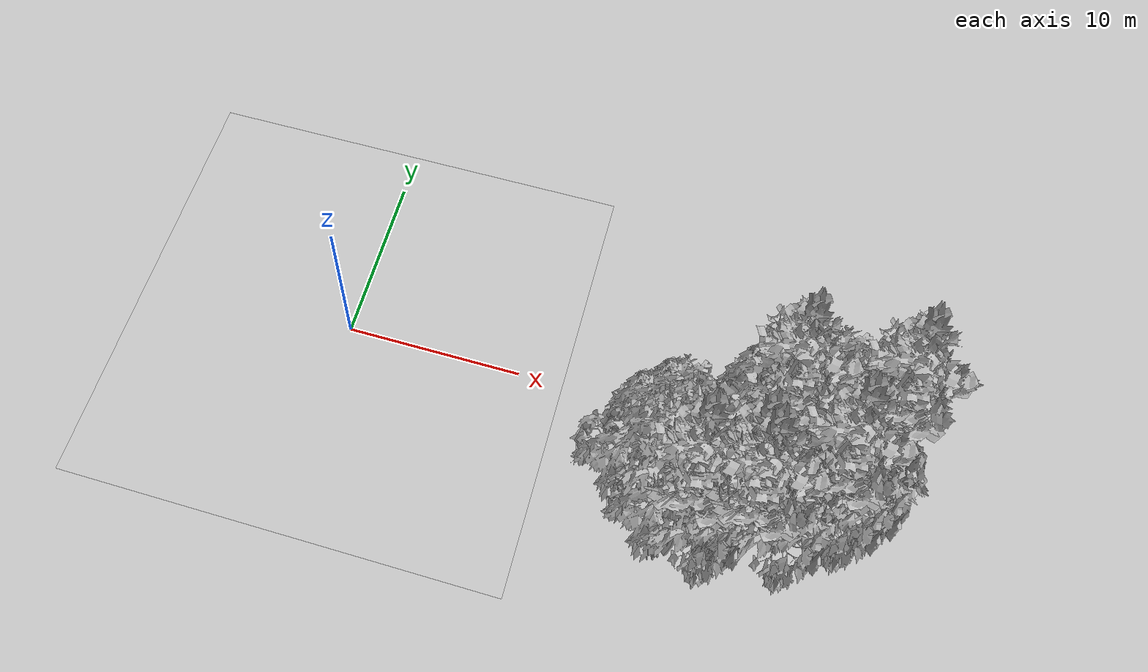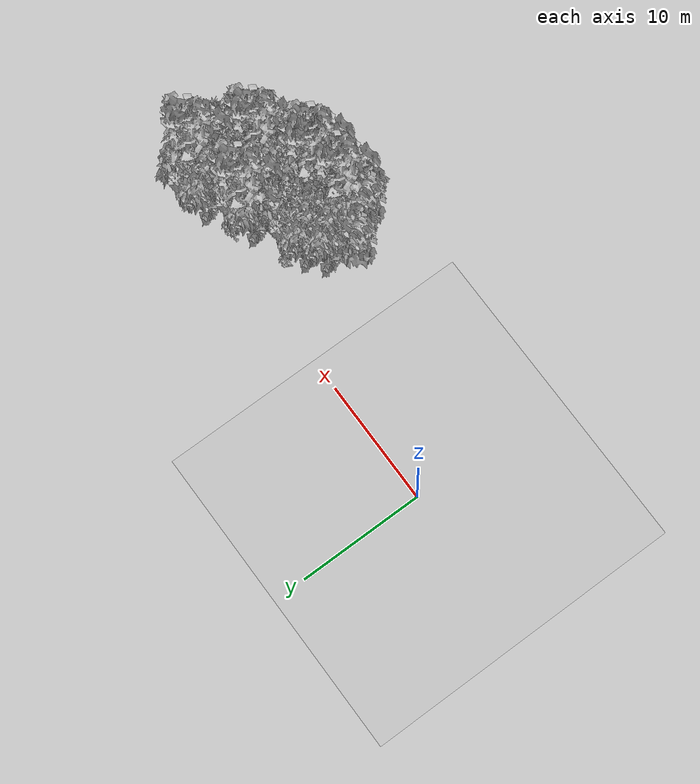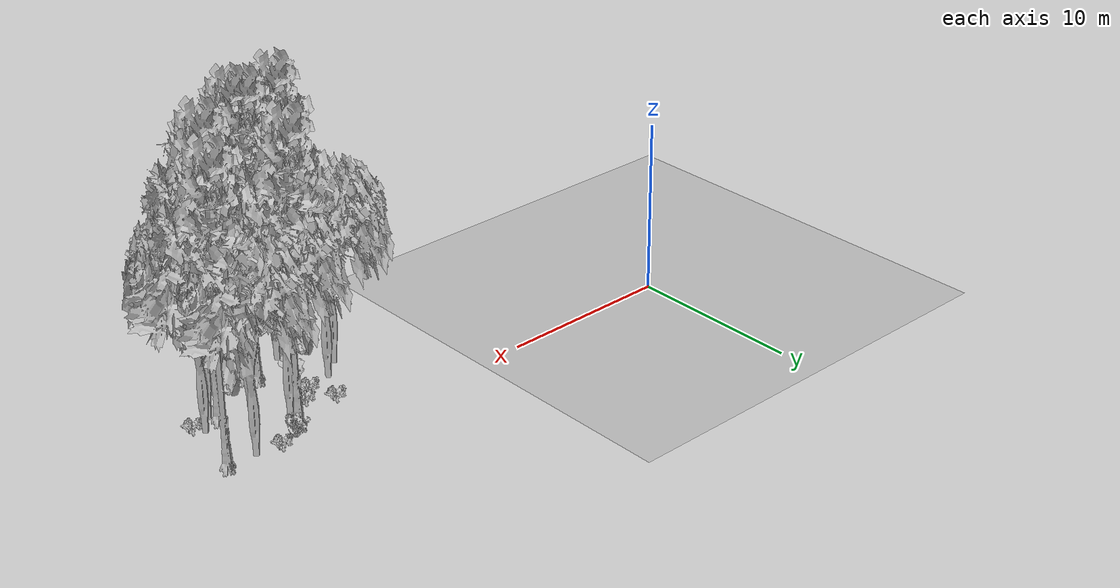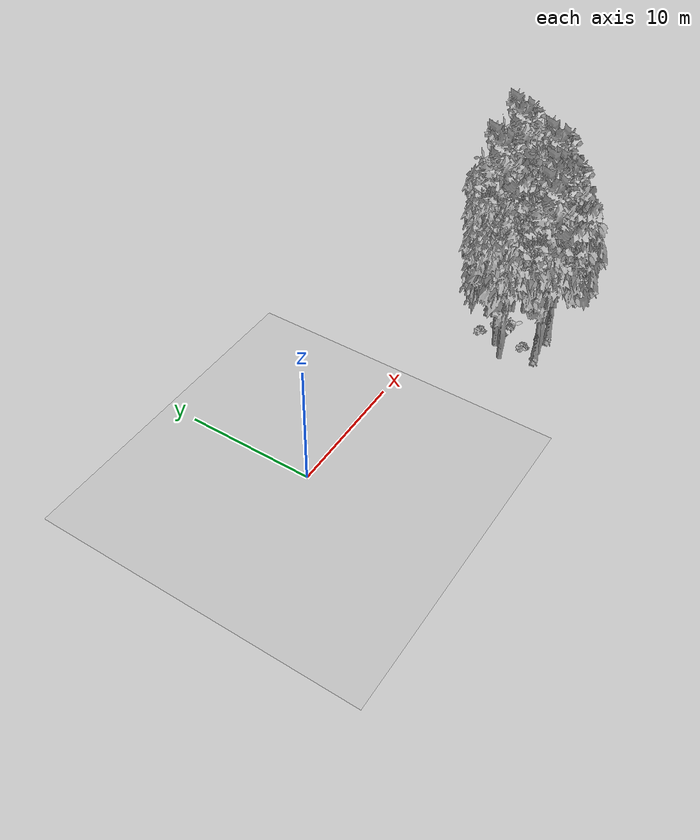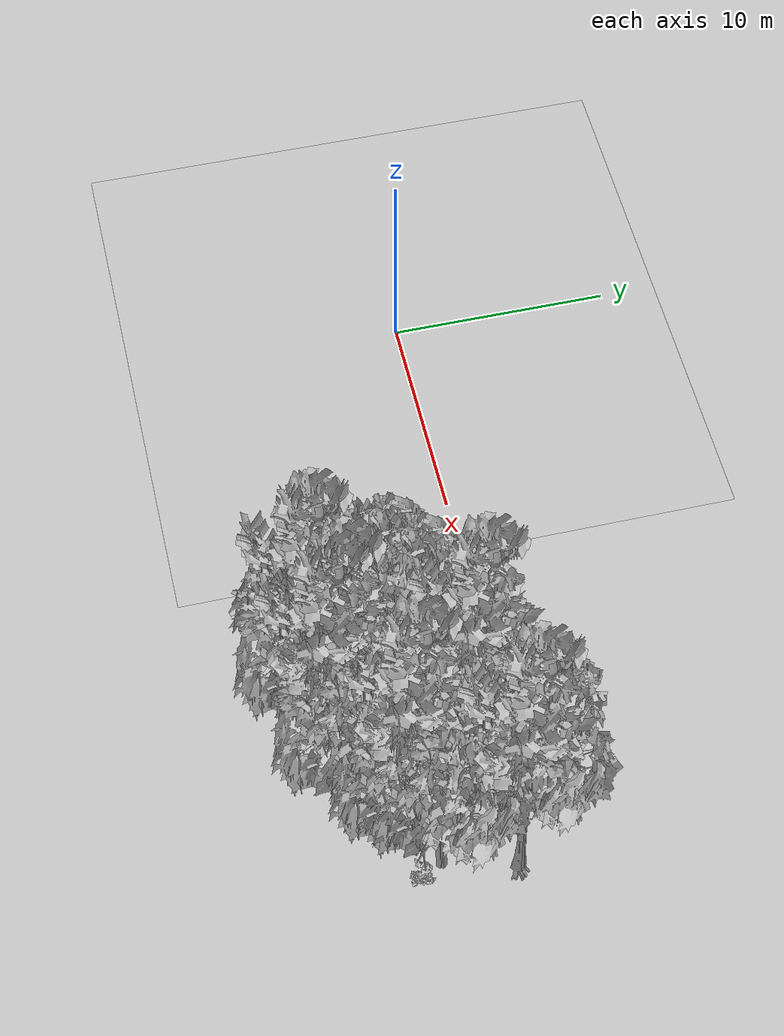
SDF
<sdf version="1.7">
 <world name="default">
  <model name="ground_plane">
   <static>1</static>
   <link name="link">
    <collision name="collision">
     <pose>-50 0 0 0 -0 0</pose>
     <geometry><plane><normal>0 0 1</normal><size>80 80</size></plane></geometry>
     <surface><contact><ode><min_depth>0.01</min_depth><max_vel>0</max_vel></ode></contact></surface>
    </collision>
    <visual name="grass">
     <cast_shadows>0</cast_shadows>
     <geometry>
      <mesh>
       <scale>0.46714285714285714 0.46714285714285714 0.1</scale>
       <uri>file://grass_plane/meshes/grass_plane.dae</uri>
      </mesh>
     </geometry>
    </visual>
   </link>
  </model>
  <model name="Tree 51">
   <static>1</static>
   <pose>21.892653599388716 -7.093573713923497 0 1.57079 -0 0</pose>
   <link name="link">
    <collision name="collision">
     <geometry><mesh><scale>3.5 5 3.5</scale><uri>model://tree_9/meshes/tree_9.obj</uri></mesh></geometry>
    </collision>
    <visual name="visual">
     <geometry><mesh><scale>3.5 5 3.5</scale><uri>model://tree_9/meshes/tree_9.obj</uri></mesh></geometry>
    </visual>
   </link>
  </model>
  <model name="Tree 112">
   <static>1</static>
   <pose>22.271250091400923 -7.65054004806732 0 1.57079 -0 0</pose>
   <link name="link">
    <collision name="collision">
     <geometry><mesh><scale>3.5 5 3.5</scale><uri>model://tree_9/meshes/tree_9.obj</uri></mesh></geometry>
    </collision>
    <visual name="visual">
     <geometry><mesh><scale>3.5 5 3.5</scale><uri>model://tree_9/meshes/tree_9.obj</uri></mesh></geometry>
    </visual>
   </link>
  </model>
  <model name="Tree 159">
   <static>1</static>
   <pose>19.56306355140191 -7.811197807668641 0 1.57079 -0 0</pose>
   <link name="link">
    <collision name="collision">
     <geometry><mesh><scale>3.5 5 3.5</scale><uri>model://tree_9/meshes/tree_9.obj</uri></mesh></geometry>
    </collision>
    <visual name="visual">
     <geometry><mesh><scale>3.5 5 3.5</scale><uri>model://tree_9/meshes/tree_9.obj</uri></mesh></geometry>
    </visual>
   </link>
  </model>
  <model name="Tree 164">
   <static>1</static>
   <pose>18.007614940359588 -5.51304747289911 0 1.57079 -0 0</pose>
   <link name="link">
    <collision name="collision">
     <geometry><mesh><scale>3.5 5 3.5</scale><uri>model://tree_2/meshes/tree_2.obj</uri></mesh></geometry>
    </collision>
    <visual name="visual">
     <geometry><mesh><scale>3.5 5 3.5</scale><uri>model://tree_2/meshes/tree_2.obj</uri></mesh></geometry>
    </visual>
   </link>
  </model>
  <model name="Tree 170">
   <static>1</static>
   <pose>22.856062127020692 -2.6814561624579483 0 1.57079 -0 0</pose>
   <link name="link">
    <collision name="collision">
     <geometry><mesh><scale>3.5 5 3.5</scale><uri>model://tree_2/meshes/tree_2.obj</uri></mesh></geometry>
    </collision>
    <visual name="visual">
     <geometry><mesh><scale>3.5 5 3.5</scale><uri>model://tree_2/meshes/tree_2.obj</uri></mesh></geometry>
    </visual>
   </link>
  </model>
  <model name="Tree 223">
   <static>1</static>
   <pose>23.611388007133755 -7.013500924439711 0 1.57079 -0 0</pose>
   <link name="link">
    <collision name="collision">
     <geometry><mesh><scale>3.5 5 3.5</scale><uri>model://tree_2/meshes/tree_2.obj</uri></mesh></geometry>
    </collision>
    <visual name="visual">
     <geometry><mesh><scale>3.5 5 3.5</scale><uri>model://tree_2/meshes/tree_2.obj</uri></mesh></geometry>
    </visual>
   </link>
  </model>
  <model name="Tree 229">
   <static>1</static>
   <pose>19.122283103579285 -4.521976339123611 0 1.57079 -0 0</pose>
   <link name="link">
    <collision name="collision">
     <geometry><mesh><scale>3.5 5 3.5</scale><uri>model://tree_2/meshes/tree_2.obj</uri></mesh></geometry>
    </collision>
    <visual name="visual">
     <geometry><mesh><scale>3.5 5 3.5</scale><uri>model://tree_2/meshes/tree_2.obj</uri></mesh></geometry>
    </visual>
   </link>
  </model>
  <model name="Tree 253">
   <static>1</static>
   <pose>25.572453912969692 -5.233674654263595 0 1.57079 -0 0</pose>
   <link name="link">
    <collision name="collision">
     <geometry><mesh><scale>3.5 5 3.5</scale><uri>model://tree_9/meshes/tree_9.obj</uri></mesh></geometry>
    </collision>
    <visual name="visual">
     <geometry><mesh><scale>3.5 5 3.5</scale><uri>model://tree_9/meshes/tree_9.obj</uri></mesh></geometry>
    </visual>
   </link>
  </model>
  <model name="Tree 276">
   <static>1</static>
   <pose>22.862468948785327 -2.065941576735675 0 1.57079 -0 0</pose>
   <link name="link">
    <collision name="collision">
     <geometry><mesh><scale>3.5 5 3.5</scale><uri>model://tree_9/meshes/tree_9.obj</uri></mesh></geometry>
    </collision>
    <visual name="visual">
     <geometry><mesh><scale>3.5 5 3.5</scale><uri>model://tree_9/meshes/tree_9.obj</uri></mesh></geometry>
    </visual>
   </link>
  </model>
  <model name="Tree 319">
   <static>1</static>
   <pose>20.050730651812977 -7.8088233647519445 0 1.57079 -0 0</pose>
   <link name="link">
    <collision name="collision">
     <geometry><mesh><scale>3.5 5 3.5</scale><uri>model://tree_2/meshes/tree_2.obj</uri></mesh></geometry>
    </collision>
    <visual name="visual">
     <geometry><mesh><scale>3.5 5 3.5</scale><uri>model://tree_2/meshes/tree_2.obj</uri></mesh></geometry>
    </visual>
   </link>
  </model>
  <model name="Tree 356">
   <static>1</static>
   <pose>26.023658733976248 -5.315486369512456 0 1.57079 -0 0</pose>
   <link name="link">
    <collision name="collision">
     <geometry><mesh><scale>3.5 5 3.5</scale><uri>model://tree_2/meshes/tree_2.obj</uri></mesh></geometry>
    </collision>
    <visual name="visual">
     <geometry><mesh><scale>3.5 5 3.5</scale><uri>model://tree_2/meshes/tree_2.obj</uri></mesh></geometry>
    </visual>
   </link>
  </model>
  <model name="Tree 390">
   <static>1</static>
   <pose>26.819453535263534 -4.3713615064267515 0 1.57079 -0 0</pose>
   <link name="link">
    <collision name="collision">
     <geometry><mesh><scale>3.5 5 3.5</scale><uri>model://tree_2/meshes/tree_2.obj</uri></mesh></geometry>
    </collision>
    <visual name="visual">
     <geometry><mesh><scale>3.5 5 3.5</scale><uri>model://tree_2/meshes/tree_2.obj</uri></mesh></geometry>
    </visual>
   </link>
  </model>
  <model name="Tree 526">
   <static>1</static>
   <pose>27.664424787869493 -1.3374204906002234 0 1.57079 -0 0</pose>
   <link name="link">
    <collision name="collision">
     <geometry><mesh><scale>3.5 5 3.5</scale><uri>model://tree_9/meshes/tree_9.obj</uri></mesh></geometry>
    </collision>
    <visual name="visual">
     <geometry><mesh><scale>3.5 5 3.5</scale><uri>model://tree_9/meshes/tree_9.obj</uri></mesh></geometry>
    </visual>
   </link>
  </model>
  <model name="Tree 620">
   <static>1</static>
   <pose>26.139580282636302 -0.9325290312812129 0 1.57079 -0 0</pose>
   <link name="link">
    <collision name="collision">
     <geometry><mesh><scale>3.5 5 3.5</scale><uri>model://tree_2/meshes/tree_2.obj</uri></mesh></geometry>
    </collision>
    <visual name="visual">
     <geometry><mesh><scale>3.5 5 3.5</scale><uri>model://tree_2/meshes/tree_2.obj</uri></mesh></geometry>
    </visual>
   </link>
  </model>
  <model name="Tree 638">
   <static>1</static>
   <pose>23.923864573987416 -4.6507271267474835 0 1.57079 -0 0</pose>
   <link name="link">
    <collision name="collision">
     <geometry><mesh><scale>3.5 5 3.5</scale><uri>model://tree_2/meshes/tree_2.obj</uri></mesh></geometry>
    </collision>
    <visual name="visual">
     <geometry><mesh><scale>3.5 5 3.5</scale><uri>model://tree_2/meshes/tree_2.obj</uri></mesh></geometry>
    </visual>
   </link>
  </model>
  <model name="Bush 66">
   <static>1</static>
   <pose>23.856453515405335 -0.8946142299846187 0 1.57079 -0 0</pose>
   <link name="link">
    <collision name="collision">
     <geometry><mesh><scale>2 2 2</scale><uri>model://bush_4/meshes/bush_4.obj</uri></mesh></geometry>
     <surface><contact><collide_without_contact>false</collide_without_contact></contact></surface>
    </collision>
    <visual name="visual">
     <geometry><mesh><scale>2 2 2</scale><uri>model://bush_4/meshes/bush_4.obj</uri></mesh></geometry>
    </visual>
   </link>
  </model>
  <model name="Bush 155">
   <static>1</static>
   <pose>27.127312835329818 -5.2177172532369624 0 1.57079 -0 0</pose>
   <link name="link">
    <collision name="collision">
     <geometry><mesh><scale>2 2 2</scale><uri>model://bush_2/meshes/bush_2.obj</uri></mesh></geometry>
     <surface><contact><collide_without_contact>false</collide_without_contact></contact></surface>
    </collision>
    <visual name="visual">
     <geometry><mesh><scale>2 2 2</scale><uri>model://bush_2/meshes/bush_2.obj</uri></mesh></geometry>
    </visual>
   </link>
  </model>
  <model name="Bush 252">
   <static>1</static>
   <pose>19.963200506526313 -2.8314935590614354 0 1.57079 -0 0</pose>
   <link name="link">
    <collision name="collision">
     <geometry><mesh><scale>2 2 2</scale><uri>model://bush_2/meshes/bush_2.obj</uri></mesh></geometry>
     <surface><contact><collide_without_contact>false</collide_without_contact></contact></surface>
    </collision>
    <visual name="visual">
     <geometry><mesh><scale>2 2 2</scale><uri>model://bush_2/meshes/bush_2.obj</uri></mesh></geometry>
    </visual>
   </link>
  </model>
  <model name="Bush 335">
   <static>1</static>
   <pose>21.343418472984418 -3.612264217160039 0 1.57079 -0 0</pose>
   <link name="link">
    <collision name="collision">
     <geometry><mesh><scale>2 2 2</scale><uri>model://bush_2/meshes/bush_2.obj</uri></mesh></geometry>
     <surface><contact><collide_without_contact>false</collide_without_contact></contact></surface>
    </collision>
    <visual name="visual">
     <geometry><mesh><scale>2 2 2</scale><uri>model://bush_2/meshes/bush_2.obj</uri></mesh></geometry>
    </visual>
   </link>
  </model>
  <model name="Bush 378">
   <static>1</static>
   <pose>21.210580821401614 -4.939285995498054 0 1.57079 -0 0</pose>
   <link name="link">
    <collision name="collision">
     <geometry><mesh><scale>2 2 2</scale><uri>model://bush_0/meshes/bush_0.obj</uri></mesh></geometry>
     <surface><contact><collide_without_contact>false</collide_without_contact></contact></surface>
    </collision>
    <visual name="visual">
     <geometry><mesh><scale>2 2 2</scale><uri>model://bush_0/meshes/bush_0.obj</uri></mesh></geometry>
    </visual>
   </link>
  </model>
  <model name="Bush 451">
   <static>1</static>
   <pose>20.018139835210206 -6.553958402459649 0 1.57079 -0 0</pose>
   <link name="link">
    <collision name="collision">
     <geometry><mesh><scale>2 2 2</scale><uri>model://bush_2/meshes/bush_2.obj</uri></mesh></geometry>
     <surface><contact><collide_without_contact>false</collide_without_contact></contact></surface>
    </collision>
    <visual name="visual">
     <geometry><mesh><scale>2 2 2</scale><uri>model://bush_2/meshes/bush_2.obj</uri></mesh></geometry>
    </visual>
   </link>
  </model>
  <model name="Bush 568">
   <static>1</static>
   <pose>20.482624018994912 -4.441039203873359 0 1.57079 -0 0</pose>
   <link name="link">
    <collision name="collision">
     <geometry><mesh><scale>2 2 2</scale><uri>model://bush_2/meshes/bush_2.obj</uri></mesh></geometry>
     <surface><contact><collide_without_contact>false</collide_without_contact></contact></surface>
    </collision>
    <visual name="visual">
     <geometry><mesh><scale>2 2 2</scale><uri>model://bush_2/meshes/bush_2.obj</uri></mesh></geometry>
    </visual>
   </link>
  </model>
  <model name="Bush 592">
   <static>1</static>
   <pose>24.65287780329914 -0.9798128080428796 0 1.57079 -0 0</pose>
   <link name="link">
    <collision name="collision">
     <geometry><mesh><scale>2 2 2</scale><uri>model://bush_2/meshes/bush_2.obj</uri></mesh></geometry>
     <surface><contact><collide_without_contact>false</collide_without_contact></contact></surface>
    </collision>
    <visual name="visual">
     <geometry><mesh><scale>2 2 2</scale><uri>model://bush_2/meshes/bush_2.obj</uri></mesh></geometry>
    </visual>
   </link>
  </model>
 </world>
</sdf>
